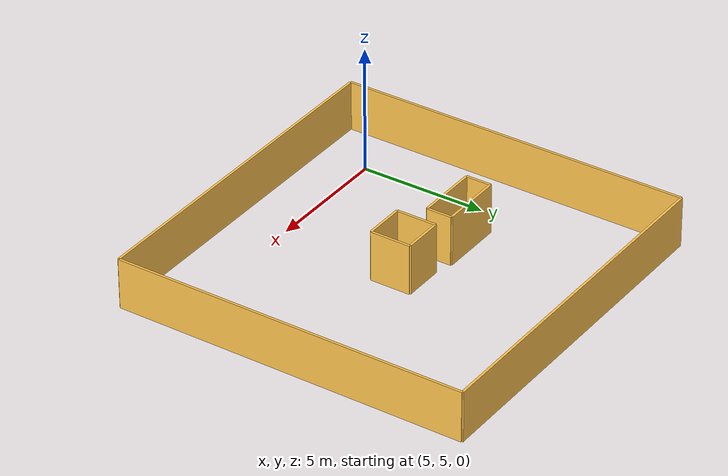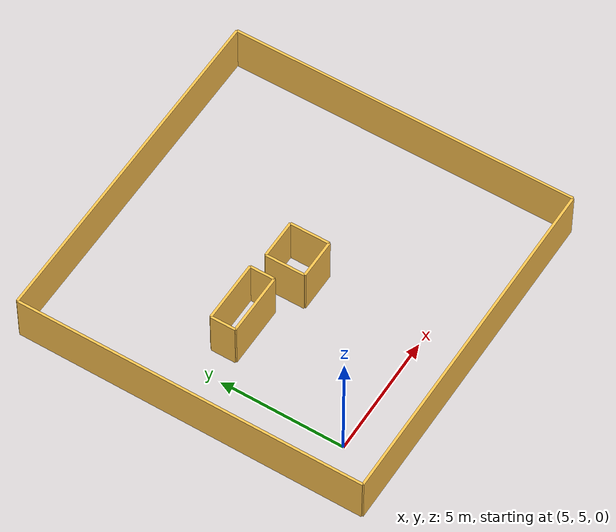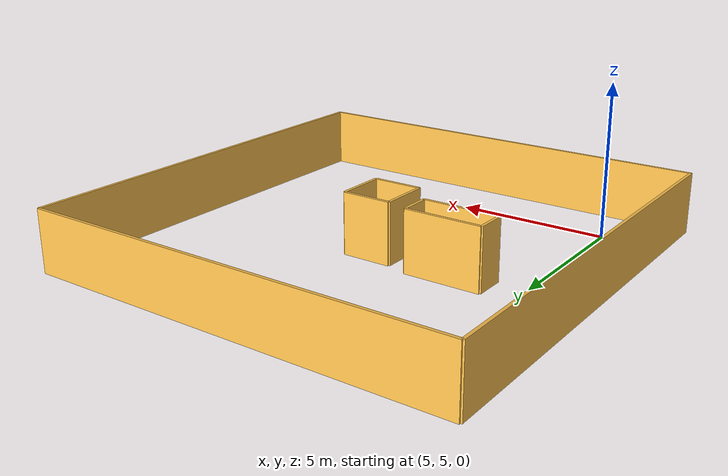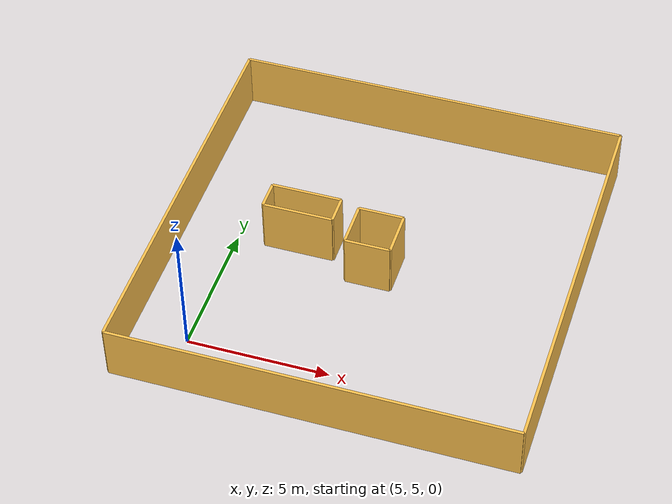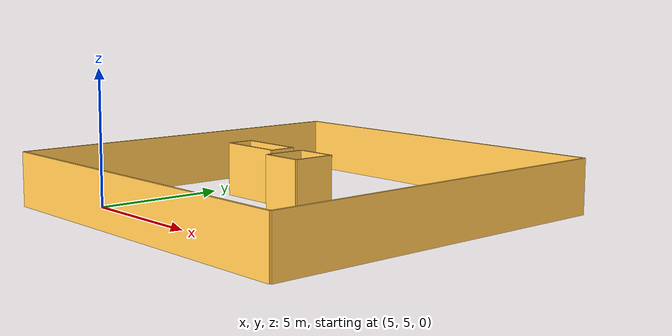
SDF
<?xml version='1.0' encoding='utf-8'?>
<sdf version="1.6">
  <model name="test_data">
    <static>true</static>
    <link name="wall_0">
      <pose>9.2 10.0 1.0 0 0 1.5707963267948966</pose>
      <self_collide>0</self_collide>
      <kinematic>0</kinematic>
      <visual name="wall_0_visual">
        <geometry>
          <box>
            <size>1.6000000000000014 0.1 2.0</size>
            </box>
          </geometry>
        <material>
          <script>
            <uri>file://media/materials/scripts/gazebo.material</uri>
            <name>Gazebo/Grey</name>
            </script>
          <ambient>1 0.764706 0.305882 1</ambient>
          <diffuse>0.7 0.7 0.7 1</diffuse>
          <specular>0.01 0.01 0.01 1</specular>
          <emissive>0 0 0 1</emissive>
          <shader type="pixel" />
          </material>
        <cast_shadows>1</cast_shadows>
        <transparency>0</transparency>
        </visual>
      <collision name="wall_0_collision">
        <geometry>
          <box>
            <size>1.6000000000000014 0.1 2.0</size>
            </box>
          </geometry>
        <laser_retro>0</laser_retro>
        <max_contacts>10</max_contacts>
        <surface>
          <friction>
            <ode>
              <mu>1</mu>
              <mu2>1</mu2>
              <fdir1>0 0 0</fdir1>
              <slip1>0</slip1>
              <slip2>0</slip2>
              </ode>
            </friction>
          <bounce>
            <restitution_coefficient>0</restitution_coefficient>
            <threshold>1000000</threshold>
            </bounce>
          <contact>
            <collide_without_contact>0</collide_without_contact>
            <collide_without_contact_bitmask>1</collide_without_contact_bitmask>
            <collide_bitmask>1</collide_bitmask>
            <ode>
              <soft_cfm>0</soft_cfm>
              <soft_erp>0.2</soft_erp>
              <kp>10000000000000.0</kp>
              <kd>1</kd>
              <max_vel>0.01</max_vel>
              <min_depth>0</min_depth>
              </ode>
            <bullet>
              <split_impulse>1</split_impulse>
              <split_impulse_penetration_threshold>-0.01</split_impulse_penetration_threshold>
              <soft_cfm>0</soft_cfm>
              <soft_erp>0.2</soft_erp>
              <kp>10000000000000.0</kp>
              <kd>1</kd>
              </bullet>
            </contact>
          </surface>
        </collision>
      </link>
    <link name="wall_1">
      <pose>10.0 10.8 1.0 0 0 0.0</pose>
      <self_collide>0</self_collide>
      <kinematic>0</kinematic>
      <visual name="wall_1_visual">
        <geometry>
          <box>
            <size>1.6000000000000014 0.1 2.0</size>
            </box>
          </geometry>
        <material>
          <script>
            <uri>file://media/materials/scripts/gazebo.material</uri>
            <name>Gazebo/Grey</name>
            </script>
          <ambient>1 0.764706 0.305882 1</ambient>
          <diffuse>0.7 0.7 0.7 1</diffuse>
          <specular>0.01 0.01 0.01 1</specular>
          <emissive>0 0 0 1</emissive>
          <shader type="pixel" />
          </material>
        <cast_shadows>1</cast_shadows>
        <transparency>0</transparency>
        </visual>
      <collision name="wall_1_collision">
        <geometry>
          <box>
            <size>1.6000000000000014 0.1 2.0</size>
            </box>
          </geometry>
        <laser_retro>0</laser_retro>
        <max_contacts>10</max_contacts>
        <surface>
          <friction>
            <ode>
              <mu>1</mu>
              <mu2>1</mu2>
              <fdir1>0 0 0</fdir1>
              <slip1>0</slip1>
              <slip2>0</slip2>
              </ode>
            </friction>
          <bounce>
            <restitution_coefficient>0</restitution_coefficient>
            <threshold>1000000</threshold>
            </bounce>
          <contact>
            <collide_without_contact>0</collide_without_contact>
            <collide_without_contact_bitmask>1</collide_without_contact_bitmask>
            <collide_bitmask>1</collide_bitmask>
            <ode>
              <soft_cfm>0</soft_cfm>
              <soft_erp>0.2</soft_erp>
              <kp>10000000000000.0</kp>
              <kd>1</kd>
              <max_vel>0.01</max_vel>
              <min_depth>0</min_depth>
              </ode>
            <bullet>
              <split_impulse>1</split_impulse>
              <split_impulse_penetration_threshold>-0.01</split_impulse_penetration_threshold>
              <soft_cfm>0</soft_cfm>
              <soft_erp>0.2</soft_erp>
              <kp>10000000000000.0</kp>
              <kd>1</kd>
              </bullet>
            </contact>
          </surface>
        </collision>
      </link>
    <link name="wall_2">
      <pose>10.8 10.0 1.0 0 0 -1.5707963267948966</pose>
      <self_collide>0</self_collide>
      <kinematic>0</kinematic>
      <visual name="wall_2_visual">
        <geometry>
          <box>
            <size>1.6000000000000014 0.1 2.0</size>
            </box>
          </geometry>
        <material>
          <script>
            <uri>file://media/materials/scripts/gazebo.material</uri>
            <name>Gazebo/Grey</name>
            </script>
          <ambient>1 0.764706 0.305882 1</ambient>
          <diffuse>0.7 0.7 0.7 1</diffuse>
          <specular>0.01 0.01 0.01 1</specular>
          <emissive>0 0 0 1</emissive>
          <shader type="pixel" />
          </material>
        <cast_shadows>1</cast_shadows>
        <transparency>0</transparency>
        </visual>
      <collision name="wall_2_collision">
        <geometry>
          <box>
            <size>1.6000000000000014 0.1 2.0</size>
            </box>
          </geometry>
        <laser_retro>0</laser_retro>
        <max_contacts>10</max_contacts>
        <surface>
          <friction>
            <ode>
              <mu>1</mu>
              <mu2>1</mu2>
              <fdir1>0 0 0</fdir1>
              <slip1>0</slip1>
              <slip2>0</slip2>
              </ode>
            </friction>
          <bounce>
            <restitution_coefficient>0</restitution_coefficient>
            <threshold>1000000</threshold>
            </bounce>
          <contact>
            <collide_without_contact>0</collide_without_contact>
            <collide_without_contact_bitmask>1</collide_without_contact_bitmask>
            <collide_bitmask>1</collide_bitmask>
            <ode>
              <soft_cfm>0</soft_cfm>
              <soft_erp>0.2</soft_erp>
              <kp>10000000000000.0</kp>
              <kd>1</kd>
              <max_vel>0.01</max_vel>
              <min_depth>0</min_depth>
              </ode>
            <bullet>
              <split_impulse>1</split_impulse>
              <split_impulse_penetration_threshold>-0.01</split_impulse_penetration_threshold>
              <soft_cfm>0</soft_cfm>
              <soft_erp>0.2</soft_erp>
              <kp>10000000000000.0</kp>
              <kd>1</kd>
              </bullet>
            </contact>
          </surface>
        </collision>
      </link>
    <link name="wall_3">
      <pose>10.0 9.2 1.0 0 0 3.141592653589793</pose>
      <self_collide>0</self_collide>
      <kinematic>0</kinematic>
      <visual name="wall_3_visual">
        <geometry>
          <box>
            <size>1.6000000000000014 0.1 2.0</size>
            </box>
          </geometry>
        <material>
          <script>
            <uri>file://media/materials/scripts/gazebo.material</uri>
            <name>Gazebo/Grey</name>
            </script>
          <ambient>1 0.764706 0.305882 1</ambient>
          <diffuse>0.7 0.7 0.7 1</diffuse>
          <specular>0.01 0.01 0.01 1</specular>
          <emissive>0 0 0 1</emissive>
          <shader type="pixel" />
          </material>
        <cast_shadows>1</cast_shadows>
        <transparency>0</transparency>
        </visual>
      <collision name="wall_3_collision">
        <geometry>
          <box>
            <size>1.6000000000000014 0.1 2.0</size>
            </box>
          </geometry>
        <laser_retro>0</laser_retro>
        <max_contacts>10</max_contacts>
        <surface>
          <friction>
            <ode>
              <mu>1</mu>
              <mu2>1</mu2>
              <fdir1>0 0 0</fdir1>
              <slip1>0</slip1>
              <slip2>0</slip2>
              </ode>
            </friction>
          <bounce>
            <restitution_coefficient>0</restitution_coefficient>
            <threshold>1000000</threshold>
            </bounce>
          <contact>
            <collide_without_contact>0</collide_without_contact>
            <collide_without_contact_bitmask>1</collide_without_contact_bitmask>
            <collide_bitmask>1</collide_bitmask>
            <ode>
              <soft_cfm>0</soft_cfm>
              <soft_erp>0.2</soft_erp>
              <kp>10000000000000.0</kp>
              <kd>1</kd>
              <max_vel>0.01</max_vel>
              <min_depth>0</min_depth>
              </ode>
            <bullet>
              <split_impulse>1</split_impulse>
              <split_impulse_penetration_threshold>-0.01</split_impulse_penetration_threshold>
              <soft_cfm>0</soft_cfm>
              <soft_erp>0.2</soft_erp>
              <kp>10000000000000.0</kp>
              <kd>1</kd>
              </bullet>
            </contact>
          </surface>
        </collision>
      </link>
    <link name="wall_4">
      <pose>7.25 10.0 1.0 0 0 0.0</pose>
      <self_collide>0</self_collide>
      <kinematic>0</kinematic>
      <visual name="wall_4_visual">
        <geometry>
          <box>
            <size>2.5 0.1 2.0</size>
            </box>
          </geometry>
        <material>
          <script>
            <uri>file://media/materials/scripts/gazebo.material</uri>
            <name>Gazebo/Grey</name>
            </script>
          <ambient>1 0.764706 0.305882 1</ambient>
          <diffuse>0.7 0.7 0.7 1</diffuse>
          <specular>0.01 0.01 0.01 1</specular>
          <emissive>0 0 0 1</emissive>
          <shader type="pixel" />
          </material>
        <cast_shadows>1</cast_shadows>
        <transparency>0</transparency>
        </visual>
      <collision name="wall_4_collision">
        <geometry>
          <box>
            <size>2.5 0.1 2.0</size>
            </box>
          </geometry>
        <laser_retro>0</laser_retro>
        <max_contacts>10</max_contacts>
        <surface>
          <friction>
            <ode>
              <mu>1</mu>
              <mu2>1</mu2>
              <fdir1>0 0 0</fdir1>
              <slip1>0</slip1>
              <slip2>0</slip2>
              </ode>
            </friction>
          <bounce>
            <restitution_coefficient>0</restitution_coefficient>
            <threshold>1000000</threshold>
            </bounce>
          <contact>
            <collide_without_contact>0</collide_without_contact>
            <collide_without_contact_bitmask>1</collide_without_contact_bitmask>
            <collide_bitmask>1</collide_bitmask>
            <ode>
              <soft_cfm>0</soft_cfm>
              <soft_erp>0.2</soft_erp>
              <kp>10000000000000.0</kp>
              <kd>1</kd>
              <max_vel>0.01</max_vel>
              <min_depth>0</min_depth>
              </ode>
            <bullet>
              <split_impulse>1</split_impulse>
              <split_impulse_penetration_threshold>-0.01</split_impulse_penetration_threshold>
              <soft_cfm>0</soft_cfm>
              <soft_erp>0.2</soft_erp>
              <kp>10000000000000.0</kp>
              <kd>1</kd>
              </bullet>
            </contact>
          </surface>
        </collision>
      </link>
    <link name="wall_5">
      <pose>8.5 10.5 1.0 0 0 1.5707963267948966</pose>
      <self_collide>0</self_collide>
      <kinematic>0</kinematic>
      <visual name="wall_5_visual">
        <geometry>
          <box>
            <size>1.0 0.1 2.0</size>
            </box>
          </geometry>
        <material>
          <script>
            <uri>file://media/materials/scripts/gazebo.material</uri>
            <name>Gazebo/Grey</name>
            </script>
          <ambient>1 0.764706 0.305882 1</ambient>
          <diffuse>0.7 0.7 0.7 1</diffuse>
          <specular>0.01 0.01 0.01 1</specular>
          <emissive>0 0 0 1</emissive>
          <shader type="pixel" />
          </material>
        <cast_shadows>1</cast_shadows>
        <transparency>0</transparency>
        </visual>
      <collision name="wall_5_collision">
        <geometry>
          <box>
            <size>1.0 0.1 2.0</size>
            </box>
          </geometry>
        <laser_retro>0</laser_retro>
        <max_contacts>10</max_contacts>
        <surface>
          <friction>
            <ode>
              <mu>1</mu>
              <mu2>1</mu2>
              <fdir1>0 0 0</fdir1>
              <slip1>0</slip1>
              <slip2>0</slip2>
              </ode>
            </friction>
          <bounce>
            <restitution_coefficient>0</restitution_coefficient>
            <threshold>1000000</threshold>
            </bounce>
          <contact>
            <collide_without_contact>0</collide_without_contact>
            <collide_without_contact_bitmask>1</collide_without_contact_bitmask>
            <collide_bitmask>1</collide_bitmask>
            <ode>
              <soft_cfm>0</soft_cfm>
              <soft_erp>0.2</soft_erp>
              <kp>10000000000000.0</kp>
              <kd>1</kd>
              <max_vel>0.01</max_vel>
              <min_depth>0</min_depth>
              </ode>
            <bullet>
              <split_impulse>1</split_impulse>
              <split_impulse_penetration_threshold>-0.01</split_impulse_penetration_threshold>
              <soft_cfm>0</soft_cfm>
              <soft_erp>0.2</soft_erp>
              <kp>10000000000000.0</kp>
              <kd>1</kd>
              </bullet>
            </contact>
          </surface>
        </collision>
      </link>
    <link name="wall_6">
      <pose>7.25 11.0 1.0 0 0 3.141592653589793</pose>
      <self_collide>0</self_collide>
      <kinematic>0</kinematic>
      <visual name="wall_6_visual">
        <geometry>
          <box>
            <size>2.5 0.1 2.0</size>
            </box>
          </geometry>
        <material>
          <script>
            <uri>file://media/materials/scripts/gazebo.material</uri>
            <name>Gazebo/Grey</name>
            </script>
          <ambient>1 0.764706 0.305882 1</ambient>
          <diffuse>0.7 0.7 0.7 1</diffuse>
          <specular>0.01 0.01 0.01 1</specular>
          <emissive>0 0 0 1</emissive>
          <shader type="pixel" />
          </material>
        <cast_shadows>1</cast_shadows>
        <transparency>0</transparency>
        </visual>
      <collision name="wall_6_collision">
        <geometry>
          <box>
            <size>2.5 0.1 2.0</size>
            </box>
          </geometry>
        <laser_retro>0</laser_retro>
        <max_contacts>10</max_contacts>
        <surface>
          <friction>
            <ode>
              <mu>1</mu>
              <mu2>1</mu2>
              <fdir1>0 0 0</fdir1>
              <slip1>0</slip1>
              <slip2>0</slip2>
              </ode>
            </friction>
          <bounce>
            <restitution_coefficient>0</restitution_coefficient>
            <threshold>1000000</threshold>
            </bounce>
          <contact>
            <collide_without_contact>0</collide_without_contact>
            <collide_without_contact_bitmask>1</collide_without_contact_bitmask>
            <collide_bitmask>1</collide_bitmask>
            <ode>
              <soft_cfm>0</soft_cfm>
              <soft_erp>0.2</soft_erp>
              <kp>10000000000000.0</kp>
              <kd>1</kd>
              <max_vel>0.01</max_vel>
              <min_depth>0</min_depth>
              </ode>
            <bullet>
              <split_impulse>1</split_impulse>
              <split_impulse_penetration_threshold>-0.01</split_impulse_penetration_threshold>
              <soft_cfm>0</soft_cfm>
              <soft_erp>0.2</soft_erp>
              <kp>10000000000000.0</kp>
              <kd>1</kd>
              </bullet>
            </contact>
          </surface>
        </collision>
      </link>
    <link name="wall_7">
      <pose>6.0 10.5 1.0 0 0 -1.5707963267948966</pose>
      <self_collide>0</self_collide>
      <kinematic>0</kinematic>
      <visual name="wall_7_visual">
        <geometry>
          <box>
            <size>1.0 0.1 2.0</size>
            </box>
          </geometry>
        <material>
          <script>
            <uri>file://media/materials/scripts/gazebo.material</uri>
            <name>Gazebo/Grey</name>
            </script>
          <ambient>1 0.764706 0.305882 1</ambient>
          <diffuse>0.7 0.7 0.7 1</diffuse>
          <specular>0.01 0.01 0.01 1</specular>
          <emissive>0 0 0 1</emissive>
          <shader type="pixel" />
          </material>
        <cast_shadows>1</cast_shadows>
        <transparency>0</transparency>
        </visual>
      <collision name="wall_7_collision">
        <geometry>
          <box>
            <size>1.0 0.1 2.0</size>
            </box>
          </geometry>
        <laser_retro>0</laser_retro>
        <max_contacts>10</max_contacts>
        <surface>
          <friction>
            <ode>
              <mu>1</mu>
              <mu2>1</mu2>
              <fdir1>0 0 0</fdir1>
              <slip1>0</slip1>
              <slip2>0</slip2>
              </ode>
            </friction>
          <bounce>
            <restitution_coefficient>0</restitution_coefficient>
            <threshold>1000000</threshold>
            </bounce>
          <contact>
            <collide_without_contact>0</collide_without_contact>
            <collide_without_contact_bitmask>1</collide_without_contact_bitmask>
            <collide_bitmask>1</collide_bitmask>
            <ode>
              <soft_cfm>0</soft_cfm>
              <soft_erp>0.2</soft_erp>
              <kp>10000000000000.0</kp>
              <kd>1</kd>
              <max_vel>0.01</max_vel>
              <min_depth>0</min_depth>
              </ode>
            <bullet>
              <split_impulse>1</split_impulse>
              <split_impulse_penetration_threshold>-0.01</split_impulse_penetration_threshold>
              <soft_cfm>0</soft_cfm>
              <soft_erp>0.2</soft_erp>
              <kp>10000000000000.0</kp>
              <kd>1</kd>
              </bullet>
            </contact>
          </surface>
        </collision>
      </link>
    <link name="wall_8">
      <pose>10.0 3.0 1.0 0 0 0.0</pose>
      <self_collide>0</self_collide>
      <kinematic>0</kinematic>
      <visual name="wall_8_visual">
        <geometry>
          <box>
            <size>14.0 0.1 2.0</size>
            </box>
          </geometry>
        <material>
          <script>
            <uri>file://media/materials/scripts/gazebo.material</uri>
            <name>Gazebo/Grey</name>
            </script>
          <ambient>1 0.764706 0.305882 1</ambient>
          <diffuse>0.7 0.7 0.7 1</diffuse>
          <specular>0.01 0.01 0.01 1</specular>
          <emissive>0 0 0 1</emissive>
          <shader type="pixel" />
          </material>
        <cast_shadows>1</cast_shadows>
        <transparency>0</transparency>
        </visual>
      <collision name="wall_8_collision">
        <geometry>
          <box>
            <size>14.0 0.1 2.0</size>
            </box>
          </geometry>
        <laser_retro>0</laser_retro>
        <max_contacts>10</max_contacts>
        <surface>
          <friction>
            <ode>
              <mu>1</mu>
              <mu2>1</mu2>
              <fdir1>0 0 0</fdir1>
              <slip1>0</slip1>
              <slip2>0</slip2>
              </ode>
            </friction>
          <bounce>
            <restitution_coefficient>0</restitution_coefficient>
            <threshold>1000000</threshold>
            </bounce>
          <contact>
            <collide_without_contact>0</collide_without_contact>
            <collide_without_contact_bitmask>1</collide_without_contact_bitmask>
            <collide_bitmask>1</collide_bitmask>
            <ode>
              <soft_cfm>0</soft_cfm>
              <soft_erp>0.2</soft_erp>
              <kp>10000000000000.0</kp>
              <kd>1</kd>
              <max_vel>0.01</max_vel>
              <min_depth>0</min_depth>
              </ode>
            <bullet>
              <split_impulse>1</split_impulse>
              <split_impulse_penetration_threshold>-0.01</split_impulse_penetration_threshold>
              <soft_cfm>0</soft_cfm>
              <soft_erp>0.2</soft_erp>
              <kp>10000000000000.0</kp>
              <kd>1</kd>
              </bullet>
            </contact>
          </surface>
        </collision>
      </link>
    <link name="wall_9">
      <pose>17.0 10.0 1.0 0 0 1.5707963267948966</pose>
      <self_collide>0</self_collide>
      <kinematic>0</kinematic>
      <visual name="wall_9_visual">
        <geometry>
          <box>
            <size>14.0 0.1 2.0</size>
            </box>
          </geometry>
        <material>
          <script>
            <uri>file://media/materials/scripts/gazebo.material</uri>
            <name>Gazebo/Grey</name>
            </script>
          <ambient>1 0.764706 0.305882 1</ambient>
          <diffuse>0.7 0.7 0.7 1</diffuse>
          <specular>0.01 0.01 0.01 1</specular>
          <emissive>0 0 0 1</emissive>
          <shader type="pixel" />
          </material>
        <cast_shadows>1</cast_shadows>
        <transparency>0</transparency>
        </visual>
      <collision name="wall_9_collision">
        <geometry>
          <box>
            <size>14.0 0.1 2.0</size>
            </box>
          </geometry>
        <laser_retro>0</laser_retro>
        <max_contacts>10</max_contacts>
        <surface>
          <friction>
            <ode>
              <mu>1</mu>
              <mu2>1</mu2>
              <fdir1>0 0 0</fdir1>
              <slip1>0</slip1>
              <slip2>0</slip2>
              </ode>
            </friction>
          <bounce>
            <restitution_coefficient>0</restitution_coefficient>
            <threshold>1000000</threshold>
            </bounce>
          <contact>
            <collide_without_contact>0</collide_without_contact>
            <collide_without_contact_bitmask>1</collide_without_contact_bitmask>
            <collide_bitmask>1</collide_bitmask>
            <ode>
              <soft_cfm>0</soft_cfm>
              <soft_erp>0.2</soft_erp>
              <kp>10000000000000.0</kp>
              <kd>1</kd>
              <max_vel>0.01</max_vel>
              <min_depth>0</min_depth>
              </ode>
            <bullet>
              <split_impulse>1</split_impulse>
              <split_impulse_penetration_threshold>-0.01</split_impulse_penetration_threshold>
              <soft_cfm>0</soft_cfm>
              <soft_erp>0.2</soft_erp>
              <kp>10000000000000.0</kp>
              <kd>1</kd>
              </bullet>
            </contact>
          </surface>
        </collision>
      </link>
    <link name="wall_10">
      <pose>10.0 17.0 1.0 0 0 3.141592653589793</pose>
      <self_collide>0</self_collide>
      <kinematic>0</kinematic>
      <visual name="wall_10_visual">
        <geometry>
          <box>
            <size>14.0 0.1 2.0</size>
            </box>
          </geometry>
        <material>
          <script>
            <uri>file://media/materials/scripts/gazebo.material</uri>
            <name>Gazebo/Grey</name>
            </script>
          <ambient>1 0.764706 0.305882 1</ambient>
          <diffuse>0.7 0.7 0.7 1</diffuse>
          <specular>0.01 0.01 0.01 1</specular>
          <emissive>0 0 0 1</emissive>
          <shader type="pixel" />
          </material>
        <cast_shadows>1</cast_shadows>
        <transparency>0</transparency>
        </visual>
      <collision name="wall_10_collision">
        <geometry>
          <box>
            <size>14.0 0.1 2.0</size>
            </box>
          </geometry>
        <laser_retro>0</laser_retro>
        <max_contacts>10</max_contacts>
        <surface>
          <friction>
            <ode>
              <mu>1</mu>
              <mu2>1</mu2>
              <fdir1>0 0 0</fdir1>
              <slip1>0</slip1>
              <slip2>0</slip2>
              </ode>
            </friction>
          <bounce>
            <restitution_coefficient>0</restitution_coefficient>
            <threshold>1000000</threshold>
            </bounce>
          <contact>
            <collide_without_contact>0</collide_without_contact>
            <collide_without_contact_bitmask>1</collide_without_contact_bitmask>
            <collide_bitmask>1</collide_bitmask>
            <ode>
              <soft_cfm>0</soft_cfm>
              <soft_erp>0.2</soft_erp>
              <kp>10000000000000.0</kp>
              <kd>1</kd>
              <max_vel>0.01</max_vel>
              <min_depth>0</min_depth>
              </ode>
            <bullet>
              <split_impulse>1</split_impulse>
              <split_impulse_penetration_threshold>-0.01</split_impulse_penetration_threshold>
              <soft_cfm>0</soft_cfm>
              <soft_erp>0.2</soft_erp>
              <kp>10000000000000.0</kp>
              <kd>1</kd>
              </bullet>
            </contact>
          </surface>
        </collision>
      </link>
    <link name="wall_11">
      <pose>3.0 10.0 1.0 0 0 -1.5707963267948966</pose>
      <self_collide>0</self_collide>
      <kinematic>0</kinematic>
      <visual name="wall_11_visual">
        <geometry>
          <box>
            <size>14.0 0.1 2.0</size>
            </box>
          </geometry>
        <material>
          <script>
            <uri>file://media/materials/scripts/gazebo.material</uri>
            <name>Gazebo/Grey</name>
            </script>
          <ambient>1 0.764706 0.305882 1</ambient>
          <diffuse>0.7 0.7 0.7 1</diffuse>
          <specular>0.01 0.01 0.01 1</specular>
          <emissive>0 0 0 1</emissive>
          <shader type="pixel" />
          </material>
        <cast_shadows>1</cast_shadows>
        <transparency>0</transparency>
        </visual>
      <collision name="wall_11_collision">
        <geometry>
          <box>
            <size>14.0 0.1 2.0</size>
            </box>
          </geometry>
        <laser_retro>0</laser_retro>
        <max_contacts>10</max_contacts>
        <surface>
          <friction>
            <ode>
              <mu>1</mu>
              <mu2>1</mu2>
              <fdir1>0 0 0</fdir1>
              <slip1>0</slip1>
              <slip2>0</slip2>
              </ode>
            </friction>
          <bounce>
            <restitution_coefficient>0</restitution_coefficient>
            <threshold>1000000</threshold>
            </bounce>
          <contact>
            <collide_without_contact>0</collide_without_contact>
            <collide_without_contact_bitmask>1</collide_without_contact_bitmask>
            <collide_bitmask>1</collide_bitmask>
            <ode>
              <soft_cfm>0</soft_cfm>
              <soft_erp>0.2</soft_erp>
              <kp>10000000000000.0</kp>
              <kd>1</kd>
              <max_vel>0.01</max_vel>
              <min_depth>0</min_depth>
              </ode>
            <bullet>
              <split_impulse>1</split_impulse>
              <split_impulse_penetration_threshold>-0.01</split_impulse_penetration_threshold>
              <soft_cfm>0</soft_cfm>
              <soft_erp>0.2</soft_erp>
              <kp>10000000000000.0</kp>
              <kd>1</kd>
              </bullet>
            </contact>
          </surface>
        </collision>
      </link>
    </model>
  </sdf>
